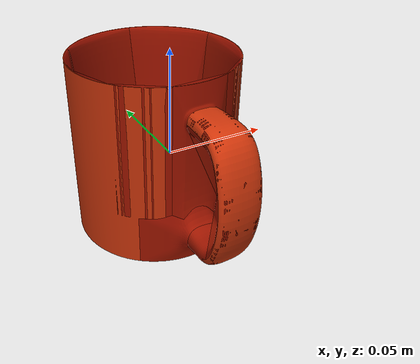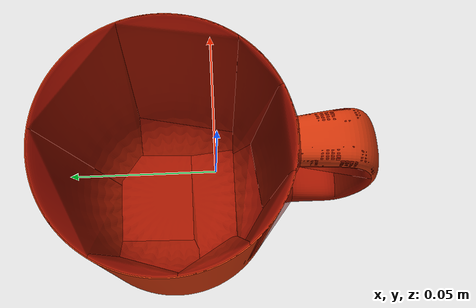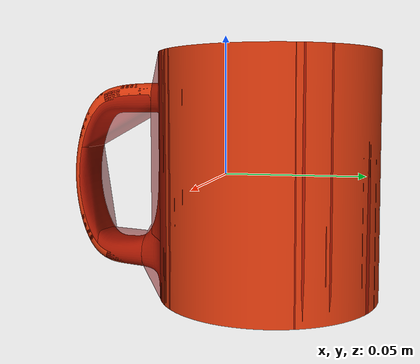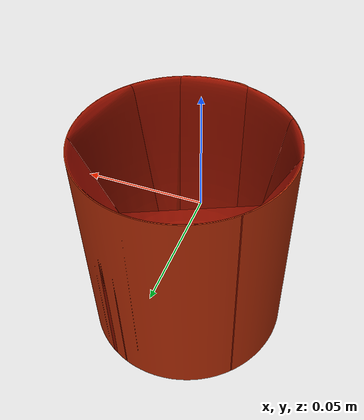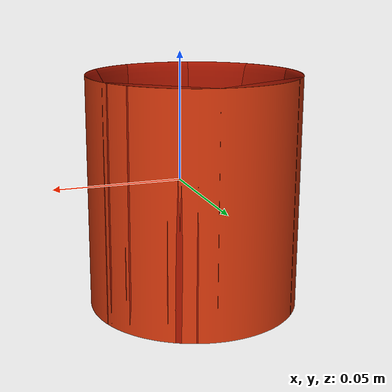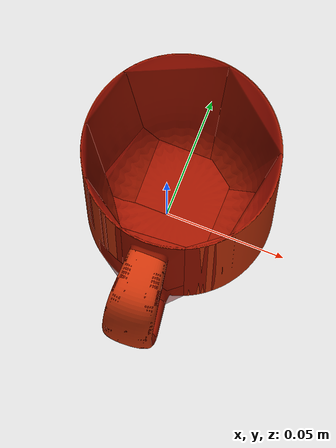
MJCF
<mujoco model="mug_25">
  <asset>
    <mesh file="visual/model_normalized_0.obj" name="model_normalized_0_vis" scale="0.11 0.11 0.11" refquat="-1.1102230246251565e-16 3.925231146709437e-17 3.925231146709438e-17 0.9999999999999999"/>
    <material name="material.079" specular="0.5" shininess="0.00226274" rgba="0.800000 0.204667 0.040000 1.0"/>
    <mesh file="collision/collision_mesh_collision_0.obj" name="mug_collision_mesh_0" scale="0.11 0.11 0.11" refquat="-1.1102230246251565e-16 3.925231146709437e-17 3.925231146709438e-17 0.9999999999999999"/>
    <mesh file="collision/collision_mesh_collision_1.obj" name="mug_collision_mesh_1" scale="0.11 0.11 0.11" refquat="-1.1102230246251565e-16 3.925231146709437e-17 3.925231146709438e-17 0.9999999999999999"/>
    <mesh file="collision/collision_mesh_collision_2.obj" name="mug_collision_mesh_2" scale="0.11 0.11 0.11" refquat="-1.1102230246251565e-16 3.925231146709437e-17 3.925231146709438e-17 0.9999999999999999"/>
    <mesh file="collision/collision_mesh_collision_3.obj" name="mug_collision_mesh_3" scale="0.11 0.11 0.11" refquat="-1.1102230246251565e-16 3.925231146709437e-17 3.925231146709438e-17 0.9999999999999999"/>
    <mesh file="collision/collision_mesh_collision_4.obj" name="mug_collision_mesh_4" scale="0.11 0.11 0.11" refquat="-1.1102230246251565e-16 3.925231146709437e-17 3.925231146709438e-17 0.9999999999999999"/>
    <mesh file="collision/collision_mesh_collision_5.obj" name="mug_collision_mesh_5" scale="0.11 0.11 0.11" refquat="-1.1102230246251565e-16 3.925231146709437e-17 3.925231146709438e-17 0.9999999999999999"/>
    <mesh file="collision/collision_mesh_collision_6.obj" name="mug_collision_mesh_6" scale="0.11 0.11 0.11" refquat="-1.1102230246251565e-16 3.925231146709437e-17 3.925231146709438e-17 0.9999999999999999"/>
    <mesh file="collision/collision_mesh_collision_7.obj" name="mug_collision_mesh_7" scale="0.11 0.11 0.11" refquat="-1.1102230246251565e-16 3.925231146709437e-17 3.925231146709438e-17 0.9999999999999999"/>
    <mesh file="collision/collision_mesh_collision_8.obj" name="mug_collision_mesh_8" scale="0.11 0.11 0.11" refquat="-1.1102230246251565e-16 3.925231146709437e-17 3.925231146709438e-17 0.9999999999999999"/>
    <mesh file="collision/collision_mesh_collision_9.obj" name="mug_collision_mesh_9" scale="0.11 0.11 0.11" refquat="-1.1102230246251565e-16 3.925231146709437e-17 3.925231146709438e-17 0.9999999999999999"/>
    <mesh file="collision/collision_mesh_collision_10.obj" name="mug_collision_mesh_10" scale="0.11 0.11 0.11" refquat="-1.1102230246251565e-16 3.925231146709437e-17 3.925231146709438e-17 0.9999999999999999"/>
    <mesh file="collision/collision_mesh_collision_11.obj" name="mug_collision_mesh_11" scale="0.11 0.11 0.11" refquat="-1.1102230246251565e-16 3.925231146709437e-17 3.925231146709438e-17 0.9999999999999999"/>
    <mesh file="collision/collision_mesh_collision_12.obj" name="mug_collision_mesh_12" scale="0.11 0.11 0.11" refquat="-1.1102230246251565e-16 3.925231146709437e-17 3.925231146709438e-17 0.9999999999999999"/>
    <mesh file="collision/collision_mesh_collision_13.obj" name="mug_collision_mesh_13" scale="0.11 0.11 0.11" refquat="-1.1102230246251565e-16 3.925231146709437e-17 3.925231146709438e-17 0.9999999999999999"/>
    <mesh file="collision/collision_mesh_collision_14.obj" name="mug_collision_mesh_14" scale="0.11 0.11 0.11" refquat="-1.1102230246251565e-16 3.925231146709437e-17 3.925231146709438e-17 0.9999999999999999"/>
    <mesh file="collision/collision_mesh_collision_15.obj" name="mug_collision_mesh_15" scale="0.11 0.11 0.11" refquat="-1.1102230246251565e-16 3.925231146709437e-17 3.925231146709438e-17 0.9999999999999999"/>
  </asset>
  <default>
    <default class="region">
      <geom group="1" conaffinity="0" contype="0" rgba="0 1 0 0"/>
    </default>
    <default class="collision">
      <geom group="0" rgba="0.5 0 0 0.5" density="1000.0"/>
    </default>
  </default>
  <worldbody>
    <body>
      <body name="object">
        <geom solimp="0.998 0.998 0.001" solref="0.001 1" density="100" friction="0.95 0.3 0.1" type="mesh" mesh="model_normalized_0_vis" conaffinity="0" contype="0" group="1" material="material.079"/>
        <geom class="region" name="reg_bbox" type="box" pos="-8.689998963473666e-08 -8.783498952891211e-07 -3.0531133177191805e-18" size="0.03926700661900748 0.05499911509359379 0.0434441106"/>
        <geom mesh="mug_collision_mesh_0" type="mesh" class="collision"/>
        <geom mesh="mug_collision_mesh_1" type="mesh" class="collision"/>
        <geom mesh="mug_collision_mesh_2" type="mesh" class="collision"/>
        <geom mesh="mug_collision_mesh_3" type="mesh" class="collision"/>
        <geom mesh="mug_collision_mesh_4" type="mesh" class="collision"/>
        <geom mesh="mug_collision_mesh_5" type="mesh" class="collision"/>
        <geom mesh="mug_collision_mesh_6" type="mesh" class="collision"/>
        <geom mesh="mug_collision_mesh_7" type="mesh" class="collision"/>
        <geom mesh="mug_collision_mesh_8" type="mesh" class="collision"/>
        <geom mesh="mug_collision_mesh_9" type="mesh" class="collision"/>
        <geom mesh="mug_collision_mesh_10" type="mesh" class="collision"/>
        <geom mesh="mug_collision_mesh_11" type="mesh" class="collision"/>
        <geom mesh="mug_collision_mesh_12" type="mesh" class="collision"/>
        <geom mesh="mug_collision_mesh_13" type="mesh" class="collision"/>
        <geom mesh="mug_collision_mesh_14" type="mesh" class="collision"/>
        <geom mesh="mug_collision_mesh_15" type="mesh" class="collision"/>
        <site rgba="0 0 0 0" size="0.039 0.034" pos="0 0.016 0.0" type="cylinder" name="liquid"/>
        <site rgba="0 0 0 0 " size="0.031 0.037" pos="0 0.016 0.006" type="cylinder" name="reg_int"/>
      </body>
    </body>
  </worldbody>
</mujoco>
